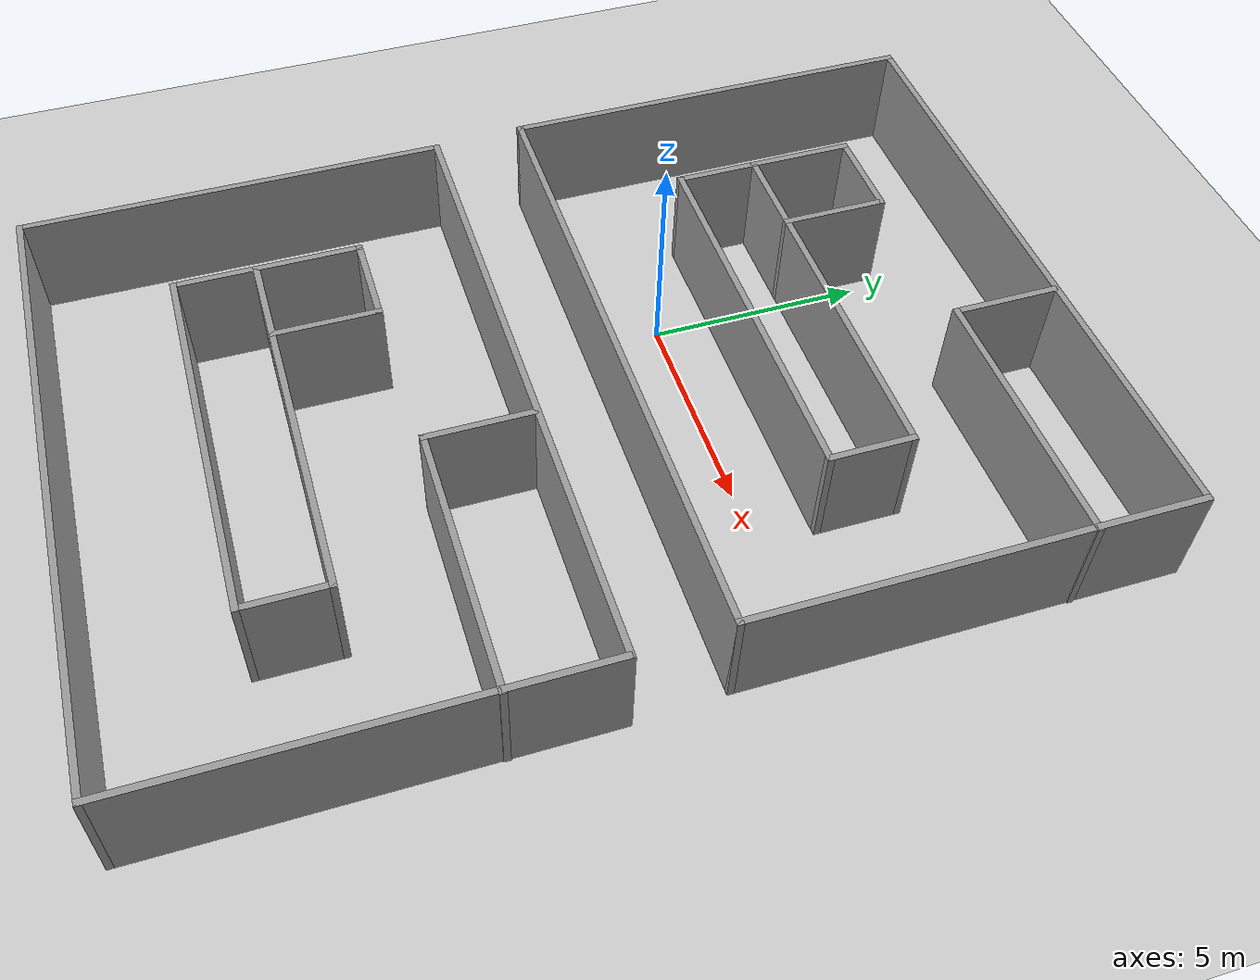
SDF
<sdf version="1.6">
 <world name="default">
  <light name="sun" type="directional">
   <pose>0 0 10 0 -0 0</pose>
   <diffuse>0.8 0.8 0.8 1</diffuse>
   <specular>0.2 0.2 0.2 1</specular>
   <attenuation>
    <range>1000</range>
    <constant>0.9</constant>
    <linear>0.01</linear>
    <quadratic>0.001</quadratic>
   </attenuation>
   <direction>-0.5 0.1 -0.9</direction>
  </light>
  <model name="ground_plane">
   <static>1</static>
   <link name="link">
    <collision name="collision">
     <geometry><plane><normal>0 0 1</normal><size>100 100</size></plane></geometry>
     <surface>
      <contact><collide_bitmask>65535</collide_bitmask></contact>
      <friction><ode><mu>100</mu><mu2>50</mu2></ode></friction>
     </surface>
    </collision>
    <visual name="visual">
     <cast_shadows>0</cast_shadows>
     <geometry><plane><normal>0 0 1</normal><size>100 100</size></plane></geometry>
     <material>
      <script><uri>file://media/materials/scripts/gazebo.material</uri><name>Gazebo/Grey</name></script>
     </material>
    </visual>
   </link>
  </model>
  <gravity>0 0 -9.8</gravity>
  <magnetic_field>6e-06 2.3e-05 -4.2e-05</magnetic_field>
  <atmosphere type="adiabatic"/>
  <physics name="default_physics" default="0" type="ode">
   <max_step_size>0.001</max_step_size>
   <real_time_factor>1</real_time_factor>
   <real_time_update_rate>1000</real_time_update_rate>
  </physics>
  <scene><ambient>0.4 0.4 0.4 1</ambient><background>0.7 0.7 0.7 1</background><shadows>1</shadows></scene>
  <spherical_coordinates>
   <surface_model>EARTH_WGS84</surface_model>
   <latitude_deg>0</latitude_deg>
   <longitude_deg>0</longitude_deg>
   <elevation>0</elevation>
   <heading_deg>0</heading_deg>
  </spherical_coordinates>
  <model name="test_maze">
   <pose>2.06821 3.145 0 0 -0 0</pose>
   <link name="Wall_0">
    <collision name="Wall_0_Collision">
     <geometry><box><size>15 0.15 2.5</size></box></geometry>
     <pose>0 0 1.25 0 -0 0</pose>
    </collision>
    <visual name="Wall_0_Visual">
     <pose>0 0 1.25 0 -0 0</pose>
     <geometry><box><size>15 0.15 2.5</size></box></geometry>
     <material>
      <script><uri>file://media/materials/scripts/gazebo.material</uri><name>Gazebo/Grey</name></script>
      <ambient>1 1 1 1</ambient>
     </material>
     <meta><layer>0</layer></meta>
    </visual>
    <pose>-0.013213 -4.925 0 0 -0 0</pose>
   </link>
   <link name="Wall_17">
    <collision name="Wall_17_Collision">
     <geometry><box><size>2.5 0.15 2.5</size></box></geometry>
     <pose>0 0 1.25 0 -0 0</pose>
    </collision>
    <visual name="Wall_17_Visual">
     <pose>0 0 1.25 0 -0 0</pose>
     <geometry><box><size>2.5 0.15 2.5</size></box></geometry>
     <material>
      <script><uri>file://media/materials/scripts/gazebo.material</uri><name>Gazebo/Grey</name></script>
      <ambient>1 1 1 1</ambient>
     </material>
     <meta><layer>0</layer></meta>
    </visual>
    <pose>1.33821 3.6776 0 0 0 -1.5708</pose>
   </link>
   <link name="Wall_18">
    <collision name="Wall_18_Collision">
     <geometry><box><size>6.25 0.15 2.5</size></box></geometry>
     <pose>0 0 1.25 0 -0 0</pose>
    </collision>
    <visual name="Wall_18_Visual">
     <pose>0 0 1.25 0 -0 0</pose>
     <geometry><box><size>6.25 0.15 2.5</size></box></geometry>
     <material>
      <script><uri>file://media/materials/scripts/gazebo.material</uri><name>Gazebo/Grey</name></script>
      <ambient>1 1 1 1</ambient>
     </material>
     <meta><layer>0</layer></meta>
    </visual>
    <pose>4.38821 2.5026 0 0 -0 0</pose>
   </link>
   <link name="Wall_25">
    <collision name="Wall_25_Collision">
     <geometry><box><size>9 0.15 2.5</size></box></geometry>
     <pose>0 0 1.25 0 -0 0</pose>
    </collision>
    <visual name="Wall_25_Visual">
     <pose>0 0 1.25 0 -0 0</pose>
     <geometry><box><size>9 0.15 2.5</size></box></geometry>
     <material>
      <script><uri>file://media/materials/scripts/gazebo.material</uri><name>Gazebo/Grey</name></script>
      <ambient>1 1 1 1</ambient>
     </material>
     <meta><layer>0</layer></meta>
    </visual>
    <pose>-0.097656 -1.79088 0 0 -0 0</pose>
   </link>
   <link name="Wall_26">
    <collision name="Wall_26_Collision">
     <geometry><box><size>2 0.15 2.5</size></box></geometry>
     <pose>0 0 1.25 0 -0 0</pose>
    </collision>
    <visual name="Wall_26_Visual">
     <pose>0 0 1.25 0 -0 0</pose>
     <geometry><box><size>2 0.15 2.5</size></box></geometry>
     <material>
      <script><uri>file://media/materials/scripts/gazebo.material</uri><name>Gazebo/Grey</name></script>
      <ambient>1 1 1 1</ambient>
     </material>
     <meta><layer>0</layer></meta>
    </visual>
    <pose>4.32734 -0.865882 0 0 -0 1.5708</pose>
   </link>
   <link name="Wall_27">
    <collision name="Wall_27_Collision">
     <geometry><box><size>9 0.15 2.5</size></box></geometry>
     <pose>0 0 1.25 0 -0 0</pose>
    </collision>
    <visual name="Wall_27_Visual">
     <pose>0 0 1.25 0 -0 0</pose>
     <geometry><box><size>9 0.15 2.5</size></box></geometry>
     <material>
      <script><uri>file://media/materials/scripts/gazebo.material</uri><name>Gazebo/Grey</name></script>
      <ambient>1 1 1 1</ambient>
     </material>
     <meta><layer>0</layer></meta>
    </visual>
    <pose>-0.097656 0.059118 0 0 -0 3.14159</pose>
   </link>
   <link name="Wall_28">
    <collision name="Wall_28_Collision">
     <geometry><box><size>2 0.15 2.5</size></box></geometry>
     <pose>0 0 1.25 0 -0 0</pose>
    </collision>
    <visual name="Wall_28_Visual">
     <pose>0 0 1.25 0 -0 0</pose>
     <geometry><box><size>2 0.15 2.5</size></box></geometry>
     <material>
      <script><uri>file://media/materials/scripts/gazebo.material</uri><name>Gazebo/Grey</name></script>
      <ambient>1 1 1 1</ambient>
     </material>
     <meta><layer>0</layer></meta>
    </visual>
    <pose>-4.52266 -0.865882 0 0 0 -1.5708</pose>
   </link>
   <link name="Wall_31">
    <collision name="Wall_31_Collision">
     <geometry><box><size>2.5 0.15 2.5</size></box></geometry>
     <pose>0 0 1.25 0 -0 0</pose>
    </collision>
    <visual name="Wall_31_Visual">
     <pose>0 0 1.25 0 -0 0</pose>
     <geometry><box><size>2.5 0.15 2.5</size></box></geometry>
     <material>
      <script><uri>file://media/materials/scripts/gazebo.material</uri><name>Gazebo/Grey</name></script>
      <ambient>1 1 1 1</ambient>
     </material>
     <meta><layer>0</layer></meta>
    </visual>
    <pose>-4.52266 1.23412 0 0 -0 1.5708</pose>
   </link>
   <link name="Wall_32">
    <collision name="Wall_32_Collision">
     <geometry><box><size>2.25 0.15 2.5</size></box></geometry>
     <pose>0 0 1.25 0 -0 0</pose>
    </collision>
    <visual name="Wall_32_Visual">
     <pose>0 0 1.25 0 -0 0</pose>
     <geometry><box><size>2.25 0.15 2.5</size></box></geometry>
     <material>
      <script><uri>file://media/materials/scripts/gazebo.material</uri><name>Gazebo/Grey</name></script>
      <ambient>1 1 1 1</ambient>
     </material>
     <meta><layer>0</layer></meta>
    </visual>
    <pose>-3.47266 2.40912 0 0 -0 0</pose>
   </link>
   <link name="Wall_33">
    <collision name="Wall_33_Collision">
     <geometry><box><size>2.5 0.15 2.5</size></box></geometry>
     <pose>0 0 1.25 0 -0 0</pose>
    </collision>
    <visual name="Wall_33_Visual">
     <pose>0 0 1.25 0 -0 0</pose>
     <geometry><box><size>2.5 0.15 2.5</size></box></geometry>
     <material>
      <script><uri>file://media/materials/scripts/gazebo.material</uri><name>Gazebo/Grey</name></script>
      <ambient>1 1 1 1</ambient>
     </material>
     <meta><layer>0</layer></meta>
    </visual>
    <pose>-2.42266 1.23412 0 0 0 -1.5708</pose>
   </link>
   <link name="Wall_4">
    <collision name="Wall_4_Collision">
     <geometry><box><size>10 0.15 2.5</size></box></geometry>
     <pose>0 0 1.25 0 -0 0</pose>
    </collision>
    <visual name="Wall_4_Visual">
     <pose>0 0 1.25 0 -0 0</pose>
     <geometry><box><size>10 0.15 2.5</size></box></geometry>
     <material>
      <script><uri>file://media/materials/scripts/gazebo.material</uri><name>Gazebo/Grey</name></script>
      <ambient>1 1 1 1</ambient>
     </material>
     <meta><layer>0</layer></meta>
    </visual>
    <pose>-7.43821 0 0 0 -0 1.5708</pose>
   </link>
   <link name="Wall_5">
    <collision name="Wall_5_Collision">
     <geometry><box><size>15 0.15 2.5</size></box></geometry>
     <pose>0 0 1.25 0 -0 0</pose>
    </collision>
    <visual name="Wall_5_Visual">
     <pose>0 0 1.25 0 -0 0</pose>
     <geometry><box><size>15 0.15 2.5</size></box></geometry>
     <material>
      <script><uri>file://media/materials/scripts/gazebo.material</uri><name>Gazebo/Grey</name></script>
      <ambient>1 1 1 1</ambient>
     </material>
     <meta><layer>0</layer></meta>
    </visual>
    <pose>-0.013213 4.925 0 0 -0 0</pose>
   </link>
   <link name="Wall_6">
    <collision name="Wall_6_Collision">
     <geometry><box><size>10 0.15 2.5</size></box></geometry>
     <pose>0 0 1.25 0 -0 0</pose>
    </collision>
    <visual name="Wall_6_Visual">
     <pose>0 0 1.25 0 -0 0</pose>
     <geometry><box><size>10 0.15 2.5</size></box></geometry>
     <material>
      <script><uri>file://media/materials/scripts/gazebo.material</uri><name>Gazebo/Grey</name></script>
      <ambient>1 1 1 1</ambient>
     </material>
     <meta><layer>0</layer></meta>
    </visual>
    <pose>7.41179 0 0 0 0 -1.5708</pose>
   </link>
   <static>1</static>
  </model>
  <model name="test_maze_clone">
   <pose>2.15623 -8.83621 0 0 -0 0</pose>
   <link name="Wall_0">
    <collision name="Wall_0_Collision">
     <geometry><box><size>15 0.15 2.5</size></box></geometry>
     <pose>0 0 1.25 0 -0 0</pose>
    </collision>
    <visual name="Wall_0_Visual">
     <pose>0 0 1.25 0 -0 0</pose>
     <geometry><box><size>15 0.15 2.5</size></box></geometry>
     <material>
      <script><uri>file://media/materials/scripts/gazebo.material</uri><name>Gazebo/Grey</name></script>
      <ambient>1 1 1 1</ambient>
     </material>
     <meta><layer>0</layer></meta>
    </visual>
    <pose>-0.013213 -4.925 0 0 -0 0</pose>
   </link>
   <link name="Wall_17">
    <collision name="Wall_17_Collision">
     <geometry><box><size>2.5 0.15 2.5</size></box></geometry>
     <pose>0 0 1.25 0 -0 0</pose>
    </collision>
    <visual name="Wall_17_Visual">
     <pose>0 0 1.25 0 -0 0</pose>
     <geometry><box><size>2.5 0.15 2.5</size></box></geometry>
     <material>
      <script><uri>file://media/materials/scripts/gazebo.material</uri><name>Gazebo/Grey</name></script>
      <ambient>1 1 1 1</ambient>
     </material>
     <meta><layer>0</layer></meta>
    </visual>
    <pose>1.33821 3.6776 0 0 0 -1.5708</pose>
   </link>
   <link name="Wall_18">
    <collision name="Wall_18_Collision">
     <geometry><box><size>6.25 0.15 2.5</size></box></geometry>
     <pose>0 0 1.25 0 -0 0</pose>
    </collision>
    <visual name="Wall_18_Visual">
     <pose>0 0 1.25 0 -0 0</pose>
     <geometry><box><size>6.25 0.15 2.5</size></box></geometry>
     <material>
      <script><uri>file://media/materials/scripts/gazebo.material</uri><name>Gazebo/Grey</name></script>
      <ambient>1 1 1 1</ambient>
     </material>
     <meta><layer>0</layer></meta>
    </visual>
    <pose>4.38821 2.5026 0 0 -0 0</pose>
   </link>
   <link name="Wall_25">
    <collision name="Wall_25_Collision">
     <geometry><box><size>9 0.15 2.5</size></box></geometry>
     <pose>0 0 1.25 0 -0 0</pose>
    </collision>
    <visual name="Wall_25_Visual">
     <pose>0 0 1.25 0 -0 0</pose>
     <geometry><box><size>9 0.15 2.5</size></box></geometry>
     <material>
      <script><uri>file://media/materials/scripts/gazebo.material</uri><name>Gazebo/Grey</name></script>
      <ambient>1 1 1 1</ambient>
     </material>
     <meta><layer>0</layer></meta>
    </visual>
    <pose>-0.097656 -1.79088 0 0 -0 0</pose>
   </link>
   <link name="Wall_26">
    <collision name="Wall_26_Collision">
     <geometry><box><size>2 0.15 2.5</size></box></geometry>
     <pose>0 0 1.25 0 -0 0</pose>
    </collision>
    <visual name="Wall_26_Visual">
     <pose>0 0 1.25 0 -0 0</pose>
     <geometry><box><size>2 0.15 2.5</size></box></geometry>
     <material>
      <script><uri>file://media/materials/scripts/gazebo.material</uri><name>Gazebo/Grey</name></script>
      <ambient>1 1 1 1</ambient>
     </material>
     <meta><layer>0</layer></meta>
    </visual>
    <pose>4.32734 -0.865882 0 0 -0 1.5708</pose>
   </link>
   <link name="Wall_27">
    <collision name="Wall_27_Collision">
     <geometry><box><size>9 0.15 2.5</size></box></geometry>
     <pose>0 0 1.25 0 -0 0</pose>
    </collision>
    <visual name="Wall_27_Visual">
     <pose>0 0 1.25 0 -0 0</pose>
     <geometry><box><size>9 0.15 2.5</size></box></geometry>
     <material>
      <script><uri>file://media/materials/scripts/gazebo.material</uri><name>Gazebo/Grey</name></script>
      <ambient>1 1 1 1</ambient>
     </material>
     <meta><layer>0</layer></meta>
    </visual>
    <pose>-0.097656 0.059118 0 0 -0 3.14159</pose>
   </link>
   <link name="Wall_28">
    <collision name="Wall_28_Collision">
     <geometry><box><size>2 0.15 2.5</size></box></geometry>
     <pose>0 0 1.25 0 -0 0</pose>
    </collision>
    <visual name="Wall_28_Visual">
     <pose>0 0 1.25 0 -0 0</pose>
     <geometry><box><size>2 0.15 2.5</size></box></geometry>
     <material>
      <script><uri>file://media/materials/scripts/gazebo.material</uri><name>Gazebo/Grey</name></script>
      <ambient>1 1 1 1</ambient>
     </material>
     <meta><layer>0</layer></meta>
    </visual>
    <pose>-4.52266 -0.865882 0 0 0 -1.5708</pose>
   </link>
   <link name="Wall_31">
    <collision name="Wall_31_Collision">
     <geometry><box><size>2.5 0.15 2.5</size></box></geometry>
     <pose>0 0 1.25 0 -0 0</pose>
    </collision>
    <visual name="Wall_31_Visual">
     <pose>0 0 1.25 0 -0 0</pose>
     <geometry><box><size>2.5 0.15 2.5</size></box></geometry>
     <material>
      <script><uri>file://media/materials/scripts/gazebo.material</uri><name>Gazebo/Grey</name></script>
      <ambient>1 1 1 1</ambient>
     </material>
     <meta><layer>0</layer></meta>
    </visual>
    <pose>-4.52266 1.23412 0 0 -0 1.5708</pose>
   </link>
   <link name="Wall_32">
    <collision name="Wall_32_Collision">
     <geometry><box><size>2.25 0.15 2.5</size></box></geometry>
     <pose>0 0 1.25 0 -0 0</pose>
    </collision>
    <visual name="Wall_32_Visual">
     <pose>0 0 1.25 0 -0 0</pose>
     <geometry><box><size>2.25 0.15 2.5</size></box></geometry>
     <material>
      <script><uri>file://media/materials/scripts/gazebo.material</uri><name>Gazebo/Grey</name></script>
      <ambient>1 1 1 1</ambient>
     </material>
     <meta><layer>0</layer></meta>
    </visual>
    <pose>-3.47266 2.40912 0 0 -0 0</pose>
   </link>
   <link name="Wall_33">
    <collision name="Wall_33_Collision">
     <geometry><box><size>2.5 0.15 2.5</size></box></geometry>
     <pose>0 0 1.25 0 -0 0</pose>
    </collision>
    <visual name="Wall_33_Visual">
     <pose>0 0 1.25 0 -0 0</pose>
     <geometry><box><size>2.5 0.15 2.5</size></box></geometry>
     <material>
      <script><uri>file://media/materials/scripts/gazebo.material</uri><name>Gazebo/Grey</name></script>
      <ambient>1 1 1 1</ambient>
     </material>
     <meta><layer>0</layer></meta>
    </visual>
    <pose>-2.42266 1.23412 0 0 0 -1.5708</pose>
   </link>
   <link name="Wall_4">
    <collision name="Wall_4_Collision">
     <geometry><box><size>10 0.15 2.5</size></box></geometry>
     <pose>0 0 1.25 0 -0 0</pose>
    </collision>
    <visual name="Wall_4_Visual">
     <pose>0 0 1.25 0 -0 0</pose>
     <geometry><box><size>10 0.15 2.5</size></box></geometry>
     <material>
      <script><uri>file://media/materials/scripts/gazebo.material</uri><name>Gazebo/Grey</name></script>
      <ambient>1 1 1 1</ambient>
     </material>
     <meta><layer>0</layer></meta>
    </visual>
    <pose>-7.43821 0 0 0 -0 1.5708</pose>
   </link>
   <link name="Wall_5">
    <collision name="Wall_5_Collision">
     <geometry><box><size>15 0.15 2.5</size></box></geometry>
     <pose>0 0 1.25 0 -0 0</pose>
    </collision>
    <visual name="Wall_5_Visual">
     <pose>0 0 1.25 0 -0 0</pose>
     <geometry><box><size>15 0.15 2.5</size></box></geometry>
     <material>
      <script><uri>file://media/materials/scripts/gazebo.material</uri><name>Gazebo/Grey</name></script>
      <ambient>1 1 1 1</ambient>
     </material>
     <meta><layer>0</layer></meta>
    </visual>
    <pose>-0.013213 4.925 0 0 -0 0</pose>
   </link>
   <link name="Wall_6">
    <collision name="Wall_6_Collision">
     <geometry><box><size>10 0.15 2.5</size></box></geometry>
     <pose>0 0 1.25 0 -0 0</pose>
    </collision>
    <visual name="Wall_6_Visual">
     <pose>0 0 1.25 0 -0 0</pose>
     <geometry><box><size>10 0.15 2.5</size></box></geometry>
     <material>
      <script><uri>file://media/materials/scripts/gazebo.material</uri><name>Gazebo/Grey</name></script>
      <ambient>1 1 1 1</ambient>
     </material>
     <meta><layer>0</layer></meta>
    </visual>
    <pose>7.41179 0 0 0 0 -1.5708</pose>
   </link>
   <static>1</static>
  </model>
 </world>
</sdf>
